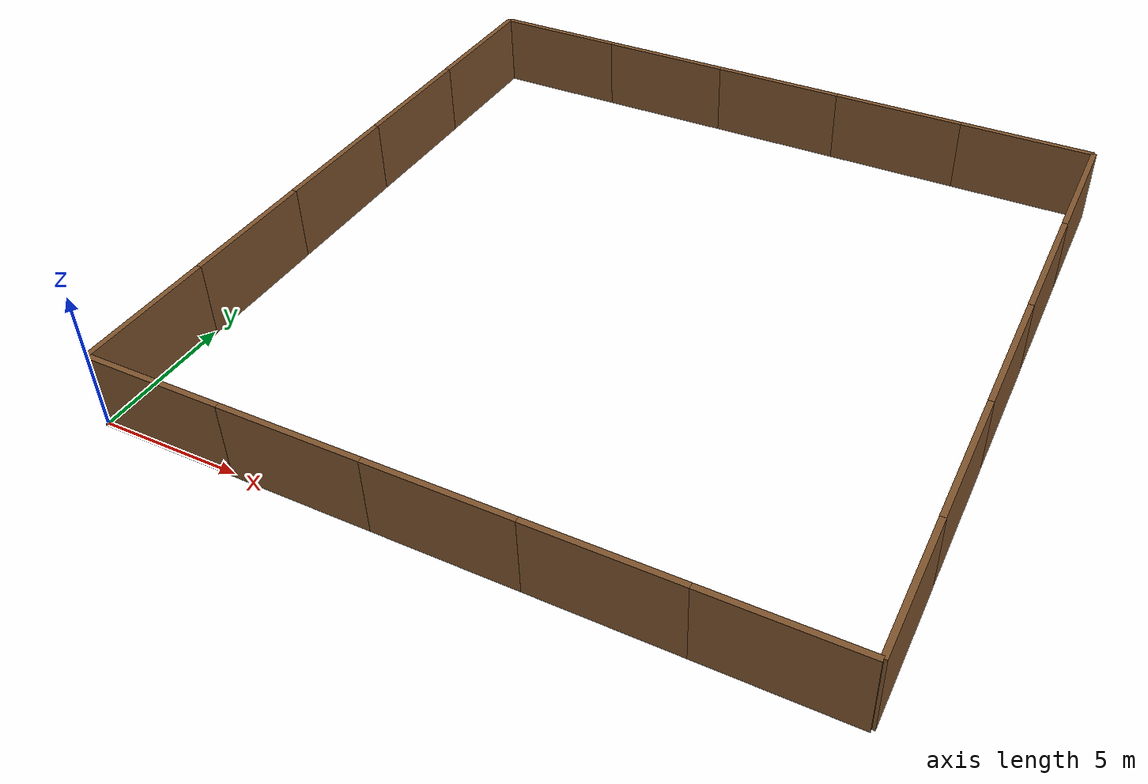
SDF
<?xml version="1.0" ?>
<sdf version="1.5">
  <model name="brownbrick_wall">
    <static>true</static>
    <link name="link1">
      <pose>2.5 0 1.4 0 0 0</pose>
      <collision name="collision">
        <geometry>
          <box>
            <size>5 0.2 2.8</size>
          </box>
        </geometry>
      </collision>
      <visual name="visual">
        <cast_shadows>false</cast_shadows>
        <geometry>
          <box>
            <size>5 0.2 2.8</size>
          </box>
        </geometry>
        <material>
          <script>
            <uri>model://brownbrick_wall/materials/scripts</uri>
            <uri>model://brownbrick_wall/materials/textures</uri>
            <name>vrc/brownbrick_wall</name>
          </script>
        </material>
      </visual>
    </link>
    <link name="link2">
      <pose>7.5 0 1.4 0 0 0</pose>
      <collision name="collision">
        <geometry>
          <box>
            <size>5 0.2 2.8</size>
          </box>
        </geometry>
      </collision>
      <visual name="visual">
        <cast_shadows>false</cast_shadows>
        <geometry>
          <box>
            <size>5 0.2 2.8</size>
          </box>
        </geometry>
        <material>
          <script>
            <uri>model://brownbrick_wall/materials/scripts</uri>
            <uri>model://brownbrick_wall/materials/textures</uri>
            <name>vrc/brownbrick_wall</name>
          </script>
        </material>
      </visual>
    </link>
    <link name="link3">
      <pose>12.5 0 1.4 0 0 0</pose>
      <collision name="collision">
        <geometry>
          <box>
            <size>5 0.2 2.8</size>
          </box>
        </geometry>
      </collision>
      <visual name="visual">
        <cast_shadows>false</cast_shadows>
        <geometry>
          <box>
            <size>5 0.2 2.8</size>
          </box>
        </geometry>
        <material>
          <script>
            <uri>model://brownbrick_wall/materials/scripts</uri>
            <uri>model://brownbrick_wall/materials/textures</uri>
            <name>vrc/brownbrick_wall</name>
          </script>
        </material>
      </visual>
    </link>
    <link name="link4">
      <pose>17.5 0 1.4 0 0 0</pose>
      <collision name="collision">
        <geometry>
          <box>
            <size>5 0.2 2.8</size>
          </box>
        </geometry>
      </collision>
      <visual name="visual">
        <cast_shadows>false</cast_shadows>
        <geometry>
          <box>
            <size>5 0.2 2.8</size>
          </box>
        </geometry>
        <material>
          <script>
            <uri>model://brownbrick_wall/materials/scripts</uri>
            <uri>model://brownbrick_wall/materials/textures</uri>
            <name>vrc/brownbrick_wall</name>
          </script>
        </material>
      </visual>
    </link>
    <link name="link5">
      <pose>22.5 0 1.4 0 0 0</pose>
      <collision name="collision">
        <geometry>
          <box>
            <size>5 0.2 2.8</size>
          </box>
        </geometry>
      </collision>
      <visual name="visual">
        <cast_shadows>false</cast_shadows>
        <geometry>
          <box>
            <size>5 0.2 2.8</size>
          </box>
        </geometry>
        <material>
          <script>
            <uri>model://brownbrick_wall/materials/scripts</uri>
            <uri>model://brownbrick_wall/materials/textures</uri>
            <name>vrc/brownbrick_wall</name>
          </script>
        </material>
      </visual>
    </link>
    <link name="link6">
      <pose>2.5 25 1.4 0 0 0</pose>
      <collision name="collision">
        <geometry>
          <box>
            <size>5 0.2 2.8</size>
          </box>
        </geometry>
      </collision>
      <visual name="visual">
        <cast_shadows>false</cast_shadows>
        <geometry>
          <box>
            <size>5 0.2 2.8</size>
          </box>
        </geometry>
        <material>
          <script>
            <uri>model://brownbrick_wall/materials/scripts</uri>
            <uri>model://brownbrick_wall/materials/textures</uri>
            <name>vrc/brownbrick_wall</name>
          </script>
        </material>
      </visual>
    </link>
    <link name="link7">
      <pose>7.5 25 1.4 0 0 0</pose>
      <collision name="collision">
        <geometry>
          <box>
            <size>5 0.2 2.8</size>
          </box>
        </geometry>
      </collision>
      <visual name="visual">
        <cast_shadows>false</cast_shadows>
        <geometry>
          <box>
            <size>5 0.2 2.8</size>
          </box>
        </geometry>
        <material>
          <script>
            <uri>model://brownbrick_wall/materials/scripts</uri>
            <uri>model://brownbrick_wall/materials/textures</uri>
            <name>vrc/brownbrick_wall</name>
          </script>
        </material>
      </visual>
    </link>
    <link name="link8">
      <pose>12.5 25 1.4 0 0 0</pose>
      <collision name="collision">
        <geometry>
          <box>
            <size>5 0.2 2.8</size>
          </box>
        </geometry>
      </collision>
      <visual name="visual">
        <cast_shadows>false</cast_shadows>
        <geometry>
          <box>
            <size>5 0.2 2.8</size>
          </box>
        </geometry>
        <material>
          <script>
            <uri>model://brownbrick_wall/materials/scripts</uri>
            <uri>model://brownbrick_wall/materials/textures</uri>
            <name>vrc/brownbrick_wall</name>
          </script>
        </material>
      </visual>
    </link>
    <link name="link9">
      <pose>17.5 25 1.4 0 0 0</pose>
      <collision name="collision">
        <geometry>
          <box>
            <size>5 0.2 2.8</size>
          </box>
        </geometry>
      </collision>
      <visual name="visual">
        <cast_shadows>false</cast_shadows>
        <geometry>
          <box>
            <size>5 0.2 2.8</size>
          </box>
        </geometry>
        <material>
          <script>
            <uri>model://brownbrick_wall/materials/scripts</uri>
            <uri>model://brownbrick_wall/materials/textures</uri>
            <name>vrc/brownbrick_wall</name>
          </script><link name="link1">
      <pose>2.5 0 1.4 0 0 0</pose>
      <collision name="collision">
        <geometry>
          <box>
            <size>5 0.2 2.8</size>
          </box>
        </geometry>
      </collision>
      <visual name="visual">
        <cast_shadows>false</cast_shadows>
        <geometry>
          <box>
            <size>5 0.2 2.8</size>
          </box>
        </geometry>
        <material>
          <script>
            <uri>model://brownbrick_wall/materials/scripts</uri>
            <uri>model://brownbrick_wall/materials/textures</uri>
            <name>vrc/brownbrick_wall</name>
          </script>
        </material>
      </visual>
    </link>
    <link name="link2">
      <pose>7.5 0 1.4 0 0 0</pose>
      <collision name="collision">
        <geometry>
          <box>
            <size>5 0.2 2.8</size>
          </box>
        </geometry>
      </collision>
      <visual name="visual">
        <cast_shadows>false</cast_shadows>
        <geometry>
          <box>
            <size>5 0.2 2.8</size>
          </box>
        </geometry>
        <material>
          <script>
            <uri>model://brownbrick_wall/materials/scripts</uri>
            <uri>model://brownbrick_wall/materials/textures</uri>
            <name>vrc/brownbrick_wall</name>
          </script>
        </material>
      </visual>
    </link>
    <link name="link3">
      <pose>12.5 0 1.4 0 0 0</pose>
      <collision name="collision">
        <geometry>
          <box>
            <size>5 0.2 2.8</size>
          </box>
        </geometry>
      </collision>
      <visual name="visual">
        <cast_shadows>false</cast_shadows>
        <geometry>
          <box>
            <size>5 0.2 2.8</size>
          </box>
        </geometry>
        <material>
          <script>
            <uri>model://brownbrick_wall/materials/scripts</uri>
            <uri>model://brownbrick_wall/materials/textures</uri>
            <name>vrc/brownbrick_wall</name>
          </script>
        </material>
      </visual>
    </link>
    <link name="link4">
      <pose>17.5 0 1.4 0 0 0</pose>
      <collision name="collision">
        <geometry>
          <box>
            <size>5 0.2 2.8</size>
          </box>
        </geometry>
      </collision>
      <visual name="visual">
        <cast_shadows>false</cast_shadows>
        <geometry>
          <box>
            <size>5 0.2 2.8</size>
          </box>
        </geometry>
        <material>
          <script>
            <uri>model://brownbrick_wall/materials/scripts</uri>
            <uri>model://brownbrick_wall/materials/textures</uri>
            <name>vrc/brownbrick_wall</name>
          </script>
        </material>
      </visual>
    </link>
    <link name="link5">
      <pose>22.5 0 1.4 0 0 0</pose>
      <collision name="collision">
        <geometry>
          <box>
            <size>5 0.2 2.8</size>
          </box>
        </geometry>
      </collision>
      <visual name="visual">
        <cast_shadows>false</cast_shadows>
        <geometry>
          <box>
            <size>5 0.2 2.8</size>
          </box>
        </geometry>
        <material>
          <script>
            <uri>model://brownbrick_wall/materials/scripts</uri>
            <uri>model://brownbrick_wall/materials/textures</uri>
            <name>vrc/brownbrick_wall</name>
          </script>
        </material>
      </visual>
    </link>
        </material>
      </visual>
    </link>
    <link name="link10">
      <pose>22.5 25 1.4 0 0 0</pose>
      <collision name="collision">
        <geometry>
          <box>
            <size>5 0.2 2.8</size>
          </box>
        </geometry>
      </collision>
      <visual name="visual">
        <cast_shadows>false</cast_shadows>
        <geometry>
          <box>
            <size>5 0.2 2.8</size>
          </box>
        </geometry>
        <material>
          <script>
            <uri>model://brownbrick_wall/materials/scripts</uri>
            <uri>model://brownbrick_wall/materials/textures</uri>
            <name>vrc/brownbrick_wall</name>
          </script>
        </material>
      </visual>
    </link>
    <link name="link11">
      <pose>0 2.5 1.4 0 0 1.57</pose>
      <collision name="collision">
        <geometry>
          <box>
            <size>5 0.2 2.8</size>
          </box>
        </geometry>
      </collision>
      <visual name="visual">
        <cast_shadows>false</cast_shadows>
        <geometry>
          <box>
            <size>5 0.2 2.8</size>
          </box>
        </geometry>
        <material>
          <script>
            <uri>model://brownbrick_wall/materials/scripts</uri>
            <uri>model://brownbrick_wall/materials/textures</uri>
            <name>vrc/brownbrick_wall</name>
          </script>
        </material>
      </visual>
    </link>
    <link name="link12">
      <pose>0 7.5 1.4 0 0 1.57</pose>
      <collision name="collision">
        <geometry>
          <box>
            <size>5 0.2 2.8</size>
          </box>
        </geometry>
      </collision>
      <visual name="visual">
        <cast_shadows>false</cast_shadows>
        <geometry>
          <box>
            <size>5 0.2 2.8</size>
          </box>
        </geometry>
        <material>
          <script>
            <uri>model://brownbrick_wall/materials/scripts</uri>
            <uri>model://brownbrick_wall/materials/textures</uri>
            <name>vrc/brownbrick_wall</name>
          </script>
        </material>
      </visual>
    </link>
    <link name="link13">
      <pose>0 12.5 1.4 0 0 1.57</pose>
      <collision name="collision">
        <geometry>
          <box>
            <size>5 0.2 2.8</size>
          </box>
        </geometry>
      </collision>
      <visual name="visual">
        <cast_shadows>false</cast_shadows>
        <geometry>
          <box>
            <size>5 0.2 2.8</size>
          </box>
        </geometry>
        <material>
          <script>
            <uri>model://brownbrick_wall/materials/scripts</uri>
            <uri>model://brownbrick_wall/materials/textures</uri>
            <name>vrc/brownbrick_wall</name>
          </script>
        </material>
      </visual>
    </link>
    <link name="link14">
      <pose>0 17.5 1.4 0 0 1.57</pose>
      <collision name="collision">
        <geometry>
          <box>
            <size>5 0.2 2.8</size>
          </box>
        </geometry>
      </collision>
      <visual name="visual">
        <cast_shadows>false</cast_shadows>
        <geometry>
          <box>
            <size>5 0.2 2.8</size>
          </box>
        </geometry>
        <material>
          <script>
            <uri>model://brownbrick_wall/materials/scripts</uri>
            <uri>model://brownbrick_wall/materials/textures</uri>
            <name>vrc/brownbrick_wall</name>
          </script>
        </material>
      </visual>
    </link>
    <link name="link15">
      <pose>0 22.5 1.4 0 0 1.57</pose>
      <collision name="collision">
        <geometry>
          <box>
            <size>5 0.2 2.8</size>
          </box>
        </geometry>
      </collision>
      <visual name="visual">
        <cast_shadows>false</cast_shadows>
        <geometry>
          <box>
            <size>5 0.2 2.8</size>
          </box>
        </geometry>
        <material>
          <script>
            <uri>model://brownbrick_wall/materials/scripts</uri>
            <uri>model://brownbrick_wall/materials/textures</uri>
            <name>vrc/brownbrick_wall</name>
          </script>
        </material>
      </visual>
    </link>
    <link name="link16">
      <pose>25 2.5 1.4 0 0 1.57</pose>
      <collision name="collision">
        <geometry>
          <box>
            <size>5 0.2 2.8</size>
          </box>
        </geometry>
      </collision>
      <visual name="visual">
        <cast_shadows>false</cast_shadows>
        <geometry>
          <box>
            <size>5 0.2 2.8</size>
          </box>
        </geometry>
        <material>
          <script>
            <uri>model://brownbrick_wall/materials/scripts</uri>
            <uri>model://brownbrick_wall/materials/textures</uri>
            <name>vrc/brownbrick_wall</name>
          </script>
        </material>
      </visual>
    </link>
    <link name="link17">
      <pose>25 7.5 1.4 0 0 1.57</pose>
      <collision name="collision">
        <geometry>
          <box>
            <size>5 0.2 2.8</size>
          </box>
        </geometry>
      </collision>
      <visual name="visual">
        <cast_shadows>false</cast_shadows>
        <geometry>
          <box>
            <size>5 0.2 2.8</size>
          </box>
        </geometry>
        <material>
          <script>
            <uri>model://brownbrick_wall/materials/scripts</uri>
            <uri>model://brownbrick_wall/materials/textures</uri>
            <name>vrc/brownbrick_wall</name>
          </script>
        </material>
      </visual>
    </link>
    <link name="link18">
      <pose>25 12.5 1.4 0 0 1.57</pose>
      <collision name="collision">
        <geometry>
          <box>
            <size>5 0.2 2.8</size>
          </box>
        </geometry>
      </collision>
      <visual name="visual">
        <cast_shadows>false</cast_shadows>
        <geometry>
          <box>
            <size>5 0.2 2.8</size>
          </box>
        </geometry>
        <material>
          <script>
            <uri>model://brownbrick_wall/materials/scripts</uri>
            <uri>model://brownbrick_wall/materials/textures</uri>
            <name>vrc/brownbrick_wall</name>
          </script>
        </material>
      </visual>
    </link>
    <link name="link19">
      <pose>25 17.5 1.4 0 0 1.57</pose>
      <collision name="collision">
        <geometry>
          <box>
            <size>5 0.2 2.8</size>
          </box>
        </geometry>
      </collision>
      <visual name="visual">
        <cast_shadows>false</cast_shadows>
        <geometry>
          <box>
            <size>5 0.2 2.8</size>
          </box>
        </geometry>
        <material>
          <script>
            <uri>model://brownbrick_wall/materials/scripts</uri>
            <uri>model://brownbrick_wall/materials/textures</uri>
            <name>vrc/brownbrick_wall</name>
          </script>
        </material>
      </visual>
    </link>
    <link name="link20">
      <pose>25 22.5 1.4 0 0 1.57</pose>
      <collision name="collision">
        <geometry>
          <box>
            <size>5 0.2 2.8</size>
          </box>
        </geometry>
      </collision>
      <visual name="visual">
        <cast_shadows>false</cast_shadows>
        <geometry>
          <box>
            <size>5 0.2 2.8</size>
          </box>
        </geometry>
        <material>
          <script>
            <uri>model://brownbrick_wall/materials/scripts</uri>
            <uri>model://brownbrick_wall/materials/textures</uri>
            <name>vrc/brownbrick_wall</name>
          </script>
        </material>
      </visual>
    </link>
  </model>
</sdf>
